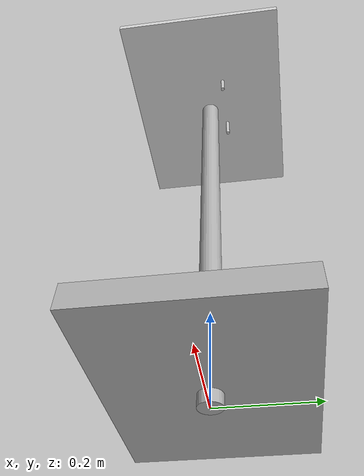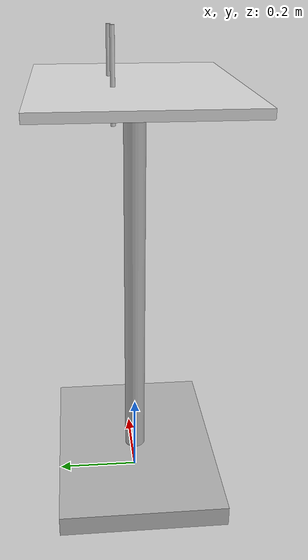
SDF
<?xml version="1.0"?>
<sdf version="1.6">
  <model name="instrument_table">
    <static>true</static>
    <link name="tray">
      <pose>0 0 1.0 0 0 0</pose>
      <collision name="c"><geometry><box><size>0.6 0.45 0.02</size></box></geometry></collision>
      <visual name="v">
        <geometry><box><size>0.6 0.45 0.02</size></box></geometry>
        <material><ambient>0.85 0.85 0.85 1</ambient><diffuse>0.85 0.85 0.85 1</diffuse>
          <specular>0.7 0.7 0.7 1</specular></material>
      </visual>
    </link>
    <link name="post">
      <pose>0 0 0.5 0 0 0</pose>
      <collision name="c"><geometry><cylinder><radius>0.025</radius><length>1.0</length></cylinder></geometry></collision>
      <visual name="v">
        <geometry><cylinder><radius>0.025</radius><length>1.0</length></cylinder></geometry>
        <material><ambient>0.7 0.7 0.7 1</ambient><diffuse>0.7 0.7 0.7 1</diffuse></material>
      </visual>
    </link>
    <link name="base">
      <pose>0 0 0.05 0 0 0</pose>
      <collision name="c"><geometry><box><size>0.55 0.4 0.05</size></box></geometry></collision>
      <visual name="v">
        <geometry><box><size>0.55 0.4 0.05</size></box></geometry>
        <material><ambient>0.7 0.7 0.7 1</ambient><diffuse>0.7 0.7 0.7 1</diffuse></material>
      </visual>
    </link>
    <!-- Surgical tools represented as thin cylinders on tray -->
    <link name="scalpel">
      <pose>0.1 0.05 1.03 0 0 0.3</pose>
      <visual name="v"><geometry><cylinder><radius>0.005</radius><length>0.18</length></cylinder></geometry>
        <material><ambient>0.8 0.8 0.8 1</ambient><diffuse>0.8 0.8 0.8 1</diffuse></material></visual>
    </link>
    <link name="scissors">
      <pose>-0.05 0.05 1.03 0 0 0</pose>
      <visual name="v"><geometry><cylinder><radius>0.005</radius><length>0.2</length></cylinder></geometry>
        <material><ambient>0.8 0.8 0.8 1</ambient><diffuse>0.8 0.8 0.8 1</diffuse></material></visual>
    </link>
  </model>
</sdf>
